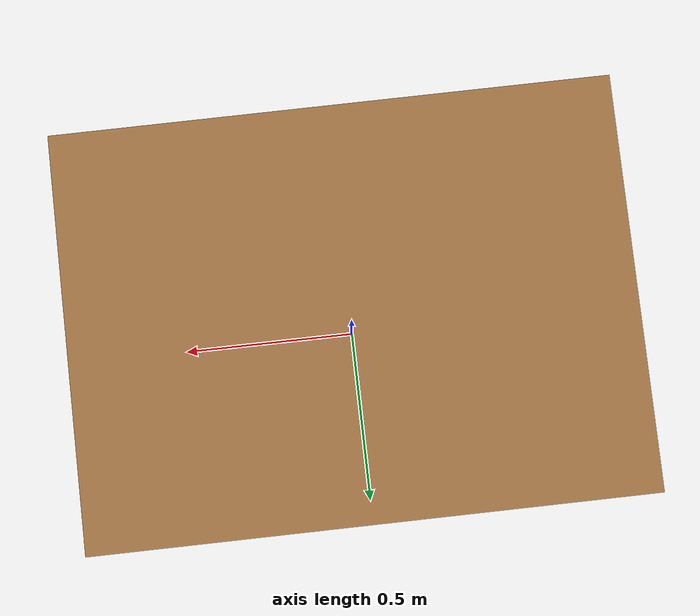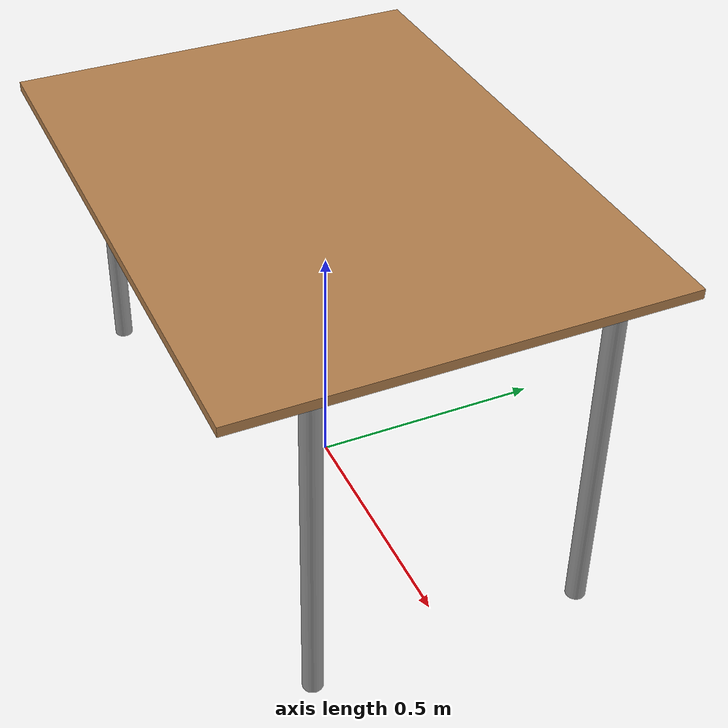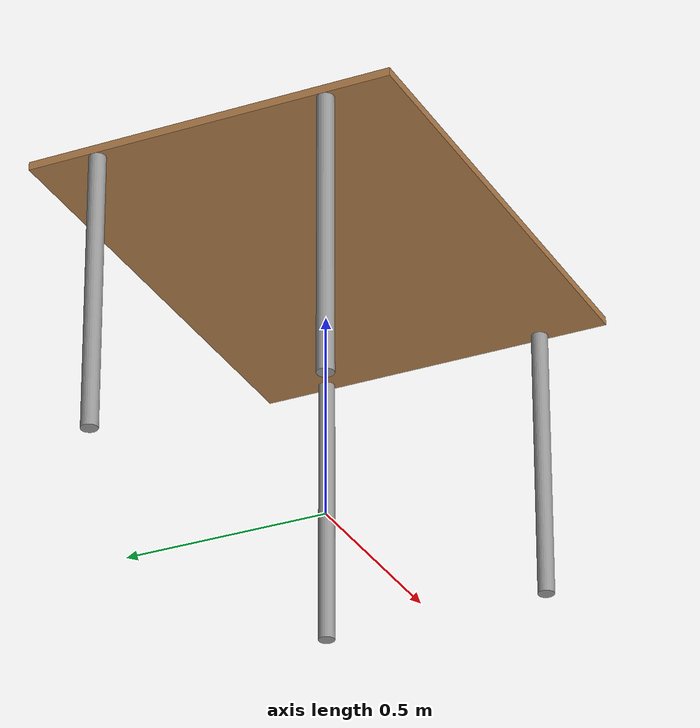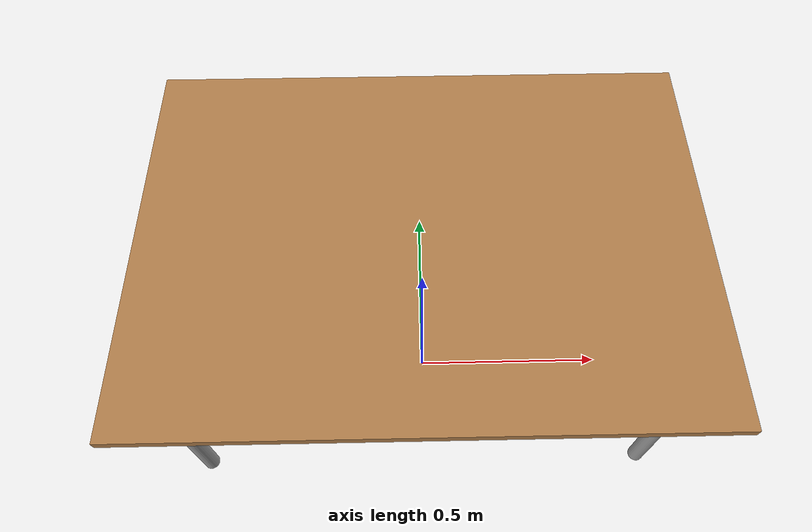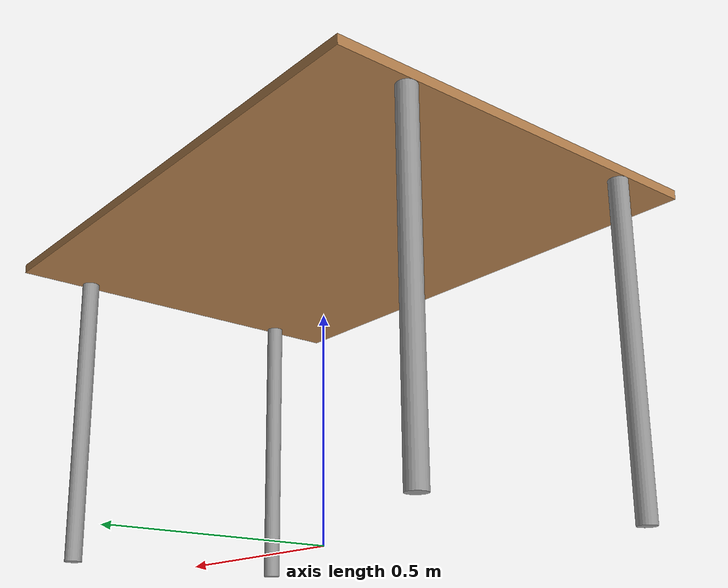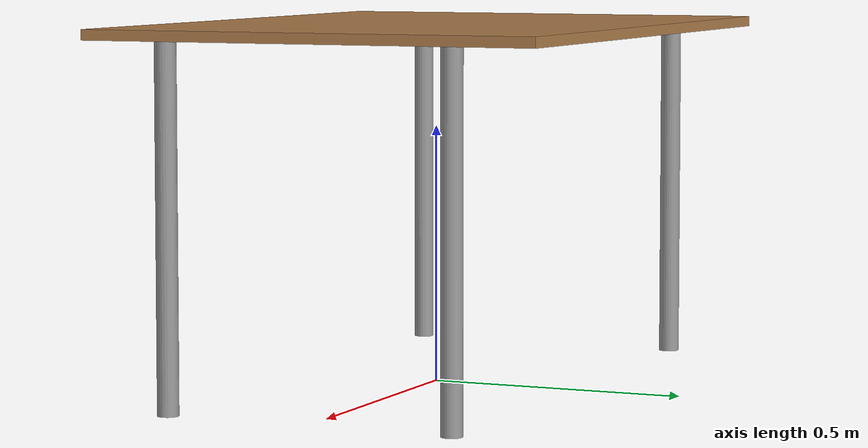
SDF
<sdf version="1.5">
  <model name="Table">
    <static>true</static>
    <link name="link">
      <collision name="surface">
        <pose>0 0 0.69 0 0 0</pose>
        <geometry>
          <box>
            <size>1.20 0.885 0.02</size>
          </box>
        </geometry>
        <surface>
          <friction>
            <ode>
              <mu>0.6</mu>
              <mu2>0.6</mu2>
            </ode>
          </friction>
        </surface>
      </collision>
      <visual name="visual1">
        <pose>0 0 0.69 0 0 0</pose>
        <geometry>
          <box>
            <size>1.20 0.885 0.02</size>
          </box>
        </geometry>
        <material>
          <ambient>1.0 1.0 1.0 1</ambient>
          <diffuse>1.0 1.0 1.0 1</diffuse>
          <script>
            <uri>file://media/materials/scripts/gazebo.material</uri>
            <name>Gazebo/Wood</name>
          </script>
          <!-- PBR for Ignition, material scripts for gazebo classic-->
          <pbr>
            <metal>
              <albedo_map>model://table_v2/Table_Diffuse.jpg</albedo_map>
            </metal>
          </pbr>
        </material>
      </visual>
      <collision name="front_left_leg">
        <pose>0.58 0.28 0.345 0 0 0</pose>
        <geometry>
          <cylinder>
            <radius>0.02</radius>
            <length>0.69</length>
          </cylinder>
        </geometry>
      </collision>
      <visual name="front_left_leg">
        <pose>0.58 0.28 0.345 0 0 0</pose>
        <geometry>
          <cylinder>
            <radius>0.02</radius>
            <length>0.69</length>
          </cylinder>
        </geometry>
        <material>
          <diffuse>0.5 0.5 0.5</diffuse>
          <script>
            <uri>file://media/materials/scripts/gazebo.material</uri>
            <name>Gazebo/Grey</name>
          </script>
        </material>
      </visual>
      <collision name="front_right_leg">
        <pose>0.58 -0.28 0.345 0 0 0</pose>
        <geometry>
          <cylinder>
            <radius>0.02</radius>
            <length>0.69</length>
          </cylinder>
        </geometry>
      </collision>
      <visual name="front_right_leg">
        <pose>0.58 -0.28 0.345 0 0 0</pose>
        <geometry>
          <cylinder>
            <radius>0.02</radius>
            <length>0.69</length>
          </cylinder>
        </geometry>
        <material>
          <diffuse>0.5 0.5 0.5</diffuse>
          <script>
            <uri>file://media/materials/scripts/gazebo.material</uri>
            <name>Gazebo/Grey</name>
          </script>
        </material>
      </visual>
      <collision name="back_right_leg">
        <pose>-0.58 -0.28 0.345 0 0 0</pose>
        <geometry>
          <cylinder>
            <radius>0.02</radius>
            <length>0.69</length>
          </cylinder>
        </geometry>
      </collision>
      <visual name="back_right_leg">
        <pose>-0.58 -0.28 0.345 0 0 0</pose>
        <geometry>
          <cylinder>
            <radius>0.02</radius>
            <length>0.69</length>
          </cylinder>
        </geometry>
        <material>
          <diffuse>0.5 0.5 0.5</diffuse>
          <script>
            <uri>file://media/materials/scripts/gazebo.material</uri>
            <name>Gazebo/Grey</name>
          </script>
        </material>
      </visual>
      <collision name="back_left_leg">
        <pose>-0.58 0.28 0.345 0 0 0</pose>
        <geometry>
          <cylinder>
            <radius>0.02</radius>
            <length>0.69</length>
          </cylinder>
        </geometry>
      </collision>
      <visual name="back_left_leg">
        <pose>-0.58 0.28 0.345 0 0 0</pose>
        <geometry>
          <cylinder>
            <radius>0.02</radius>
            <length>0.69</length>
          </cylinder>
        </geometry>
        <material>
          <diffuse>0.5 0.5 0.5</diffuse>
          <script>
            <uri>file://media/materials/scripts/gazebo.material</uri>
            <name>Gazebo/Grey</name>
          </script>
        </material>
      </visual>
    </link>
  </model>
</sdf>
